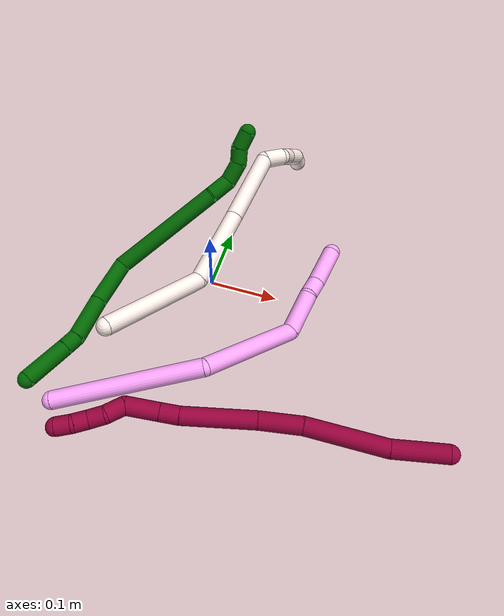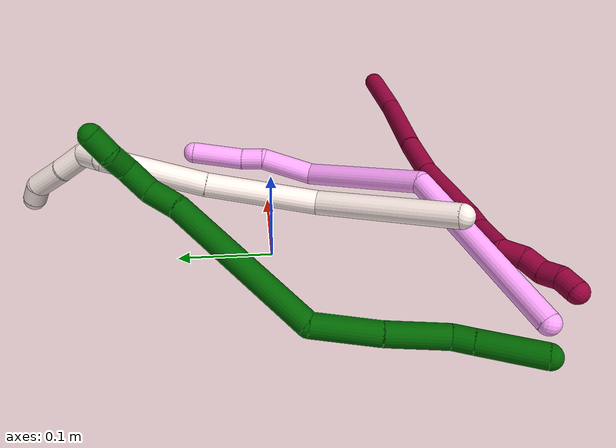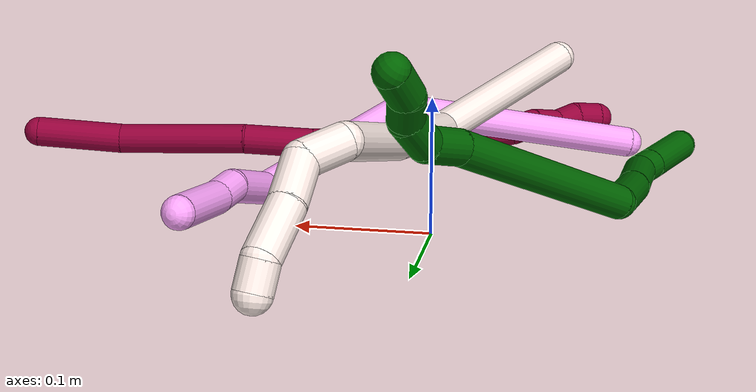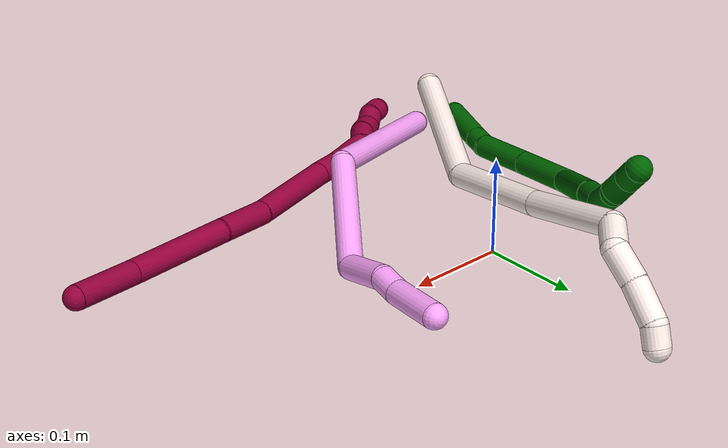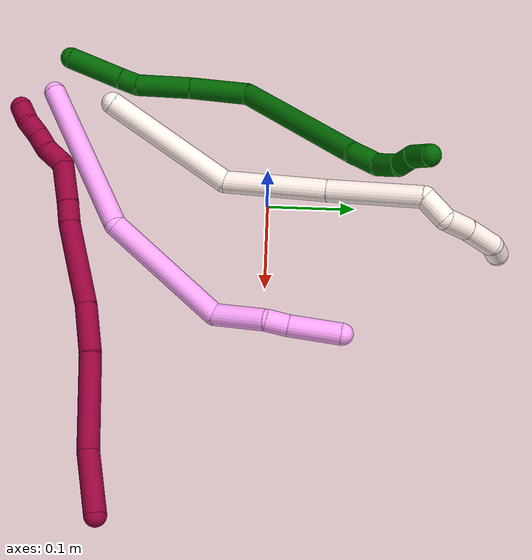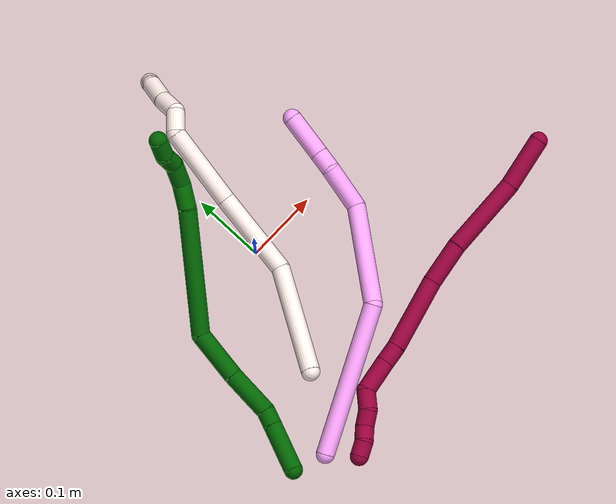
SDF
<sdf version="1.7">
 <world name="default">
  <model name="4">
   <static>0</static>
   <link name="4">
    <collision name="collision-cylinder-e_1_1_4">
     <pose>0.023759 0.081052 -0.058767 -2.19814 0.233009 -0.451027</pose>
     <geometry><cylinder><radius>0.0125</radius><length>0.205792</length></cylinder></geometry>
     <surface>
      <friction><ode><mu>1.16</mu><mu2>1.16</mu2><slip1>0</slip1><slip2>0</slip2></ode></friction>
      <contact><ode><kp>1e+06</kp><kd>1</kd><max_vel>0</max_vel><min_depth>0.001</min_depth></ode></contact>
     </surface>
    </collision>
    <visual name="visual-cylinder-e_1_1_4">
     <pose>0.023759 0.081052 -0.058767 -2.19814 0.233009 -0.451027</pose>
     <geometry><cylinder><radius>0.0125</radius><length>0.205792</length></cylinder></geometry>
     <material><ambient>1 0.65098 0.996078 1</ambient></material>
    </visual>
    <collision name="collision-cylinder-e_2_4_5">
     <pose>0.088465 0.181377 -0.175878 -2.82256 0.587814 -2.16446</pose>
     <geometry><cylinder><radius>0.0125</radius><length>0.147675</length></cylinder></geometry>
     <surface>
      <friction><ode><mu>1.16</mu><mu2>1.16</mu2><slip1>0</slip1><slip2>0</slip2></ode></friction>
      <contact><ode><kp>1e+06</kp><kd>1</kd><max_vel>0</max_vel><min_depth>0.001</min_depth></ode></contact>
     </surface>
    </collision>
    <visual name="visual-cylinder-e_2_4_5">
     <pose>0.088465 0.181377 -0.175878 -2.82256 0.587814 -2.16446</pose>
     <geometry><cylinder><radius>0.0125</radius><length>0.147675</length></cylinder></geometry>
     <material><ambient>1 0.65098 0.996078 1</ambient></material>
    </visual>
    <collision name="collision-cylinder-e_3_5_6">
     <pose>0.125845 0.203298 -0.26429 -3.0537 -0.117575 1.85825</pose>
     <geometry><cylinder><radius>0.0125</radius><length>0.060791</length></cylinder></geometry>
     <surface>
      <friction><ode><mu>1.16</mu><mu2>1.16</mu2><slip1>0</slip1><slip2>0</slip2></ode></friction>
      <contact><ode><kp>1e+06</kp><kd>1</kd><max_vel>0</max_vel><min_depth>0.001</min_depth></ode></contact>
     </surface>
    </collision>
    <visual name="visual-cylinder-e_3_5_6">
     <pose>0.125845 0.203298 -0.26429 -3.0537 -0.117575 1.85825</pose>
     <geometry><cylinder><radius>0.0125</radius><length>0.060791</length></cylinder></geometry>
     <material><ambient>1 0.65098 0.996078 1</ambient></material>
    </visual>
    <collision name="collision-cylinder-e_4_6_7">
     <pose>0.12514 0.205275 -0.307 3.08838 0.222209 2.67323</pose>
     <geometry><cylinder><radius>0.0125</radius><length>0.025956</length></cylinder></geometry>
     <surface>
      <friction><ode><mu>1.16</mu><mu2>1.16</mu2><slip1>0</slip1><slip2>0</slip2></ode></friction>
      <contact><ode><kp>1e+06</kp><kd>1</kd><max_vel>0</max_vel><min_depth>0.001</min_depth></ode></contact>
     </surface>
    </collision>
    <visual name="visual-cylinder-e_4_6_7">
     <pose>0.12514 0.205275 -0.307 3.08838 0.222209 2.67323</pose>
     <geometry><cylinder><radius>0.0125</radius><length>0.025956</length></cylinder></geometry>
     <material><ambient>1 0.65098 0.996078 1</ambient></material>
    </visual>
    <collision name="collision-cylinder-e_5_7_2">
     <pose>0.129542 0.204323 -0.349494 3.13229 0.051617 2.7849</pose>
     <geometry><cylinder><radius>0.0125</radius><length>0.059787</length></cylinder></geometry>
     <surface>
      <friction><ode><mu>1.16</mu><mu2>1.16</mu2><slip1>0</slip1><slip2>0</slip2></ode></friction>
      <contact><ode><kp>1e+06</kp><kd>1</kd><max_vel>0</max_vel><min_depth>0.001</min_depth></ode></contact>
     </surface>
    </collision>
    <visual name="visual-cylinder-e_5_7_2">
     <pose>0.129542 0.204323 -0.349494 3.13229 0.051617 2.7849</pose>
     <geometry><cylinder><radius>0.0125</radius><length>0.059787</length></cylinder></geometry>
     <material><ambient>1 0.65098 0.996078 1</ambient></material>
    </visual>
    <collision name="collision-sphere-2">
     <pose>0.131084 0.204045 -0.379346 0 -0 0</pose>
     <geometry><sphere><radius>0.0125</radius></sphere></geometry>
     <surface>
      <friction><ode><mu>1.16</mu><mu2>1.16</mu2><slip1>0</slip1><slip2>0</slip2></ode></friction>
      <contact><ode><kp>1e+06</kp><kd>1</kd><max_vel>0</max_vel><min_depth>0.001</min_depth></ode></contact>
     </surface>
    </collision>
    <visual name="visual-sphere-2">
     <pose>0.131084 0.204045 -0.379346 0 -0 0</pose>
     <geometry><sphere><radius>0.0125</radius></sphere></geometry>
     <material><ambient>1 0.65098 0.996078 1</ambient></material>
    </visual>
    <collision name="collision-sphere-7">
     <pose>0.128 0.204601 -0.319641 0 -0 0</pose>
     <geometry><sphere><radius>0.0125</radius></sphere></geometry>
     <surface>
      <friction><ode><mu>1.16</mu><mu2>1.16</mu2><slip1>0</slip1><slip2>0</slip2></ode></friction>
      <contact><ode><kp>1e+06</kp><kd>1</kd><max_vel>0</max_vel><min_depth>0.001</min_depth></ode></contact>
     </surface>
    </collision>
    <visual name="visual-sphere-7">
     <pose>0.128 0.204601 -0.319641 0 -0 0</pose>
     <geometry><sphere><radius>0.0125</radius></sphere></geometry>
     <material><ambient>1 0.65098 0.996078 1</ambient></material>
    </visual>
    <collision name="collision-sphere-6">
     <pose>0.12228 0.205948 -0.294359 0 -0 0</pose>
     <geometry><sphere><radius>0.0125</radius></sphere></geometry>
     <surface>
      <friction><ode><mu>1.16</mu><mu2>1.16</mu2><slip1>0</slip1><slip2>0</slip2></ode></friction>
      <contact><ode><kp>1e+06</kp><kd>1</kd><max_vel>0</max_vel><min_depth>0.001</min_depth></ode></contact>
     </surface>
    </collision>
    <visual name="visual-sphere-6">
     <pose>0.12228 0.205948 -0.294359 0 -0 0</pose>
     <geometry><sphere><radius>0.0125</radius></sphere></geometry>
     <material><ambient>1 0.65098 0.996078 1</ambient></material>
    </visual>
    <collision name="collision-sphere-5">
     <pose>0.129411 0.200649 -0.234221 0 -0 0</pose>
     <geometry><sphere><radius>0.0125</radius></sphere></geometry>
     <surface>
      <friction><ode><mu>1.16</mu><mu2>1.16</mu2><slip1>0</slip1><slip2>0</slip2></ode></friction>
      <contact><ode><kp>1e+06</kp><kd>1</kd><max_vel>0</max_vel><min_depth>0.001</min_depth></ode></contact>
     </surface>
    </collision>
    <visual name="visual-sphere-5">
     <pose>0.129411 0.200649 -0.234221 0 -0 0</pose>
     <geometry><sphere><radius>0.0125</radius></sphere></geometry>
     <material><ambient>1 0.65098 0.996078 1</ambient></material>
    </visual>
    <collision name="collision-sphere-1">
     <geometry><sphere><radius>0.0125</radius></sphere></geometry>
     <surface>
      <friction><ode><mu>1.16</mu><mu2>1.16</mu2><slip1>0</slip1><slip2>0</slip2></ode></friction>
      <contact><ode><kp>1e+06</kp><kd>1</kd><max_vel>0</max_vel><min_depth>0.001</min_depth></ode></contact>
     </surface>
    </collision>
    <visual name="visual-sphere-1">
     <geometry><sphere><radius>0.0125</radius></sphere></geometry>
     <material><ambient>1 0.65098 0.996078 1</ambient></material>
    </visual>
    <collision name="collision-sphere-4">
     <pose>0.047519 0.162105 -0.117534 0 -0 0</pose>
     <geometry><sphere><radius>0.0125</radius></sphere></geometry>
     <surface>
      <friction><ode><mu>1.16</mu><mu2>1.16</mu2><slip1>0</slip1><slip2>0</slip2></ode></friction>
      <contact><ode><kp>1e+06</kp><kd>1</kd><max_vel>0</max_vel><min_depth>0.001</min_depth></ode></contact>
     </surface>
    </collision>
    <visual name="visual-sphere-4">
     <pose>0.047519 0.162105 -0.117534 0 -0 0</pose>
     <geometry><sphere><radius>0.0125</radius></sphere></geometry>
     <material><ambient>1 0.65098 0.996078 1</ambient></material>
    </visual>
    <inertial>
     <pose>0.073193 0.146734 -0.165993 0 -0 0</pose>
     <mass>0.5</mass>
     <inertia>
      <ixx>2.6e-05</ixx>
      <ixy>0</ixy>
      <ixz>0</ixz>
      <iyy>-0.000572</iyy>
      <iyz>0</iyz>
      <izz>-0.001002</izz>
     </inertia>
    </inertial>
   </link>
   <pose>-0.133673 -0.25305 0.011497 1.91155 1.12007 0.155203</pose>
  </model>
  <model name="6">
   <static>0</static>
   <link name="6">
    <collision name="collision-cylinder-e_1_1_4">
     <pose>0.007081 0.031804 0.000307 -1.56115 0.219059 -0.216973</pose>
     <geometry><cylinder><radius>0.0125</radius><length>0.065168</length></cylinder></geometry>
     <surface>
      <friction><ode><mu>1.16</mu><mu2>1.16</mu2><slip1>0</slip1><slip2>0</slip2></ode></friction>
      <contact><ode><kp>1e+06</kp><kd>1</kd><max_vel>0</max_vel><min_depth>0.001</min_depth></ode></contact>
     </surface>
    </collision>
    <visual name="visual-cylinder-e_1_1_4">
     <pose>0.007081 0.031804 0.000307 -1.56115 0.219059 -0.216973</pose>
     <geometry><cylinder><radius>0.0125</radius><length>0.065168</length></cylinder></geometry>
     <material><ambient>0 0.392157 0.003922 1</ambient></material>
    </visual>
    <collision name="collision-cylinder-e_2_4_5">
     <pose>0.016421 0.07413 0.000445 -1.58684 0.211509 -0.214904</pose>
     <geometry><cylinder><radius>0.0125</radius><length>0.021527</length></cylinder></geometry>
     <surface>
      <friction><ode><mu>1.16</mu><mu2>1.16</mu2><slip1>0</slip1><slip2>0</slip2></ode></friction>
      <contact><ode><kp>1e+06</kp><kd>1</kd><max_vel>0</max_vel><min_depth>0.001</min_depth></ode></contact>
     </surface>
    </collision>
    <visual name="visual-cylinder-e_2_4_5">
     <pose>0.016421 0.07413 0.000445 -1.58684 0.211509 -0.214904</pose>
     <geometry><cylinder><radius>0.0125</radius><length>0.021527</length></cylinder></geometry>
     <material><ambient>0 0.392157 0.003922 1</ambient></material>
    </visual>
    <collision name="collision-cylinder-e_3_5_6">
     <pose>0.030886 0.112726 -0.007981 -1.85683 0.395149 -0.522833</pose>
     <geometry><cylinder><radius>0.0125</radius><length>0.06341</length></cylinder></geometry>
     <surface>
      <friction><ode><mu>1.16</mu><mu2>1.16</mu2><slip1>0</slip1><slip2>0</slip2></ode></friction>
      <contact><ode><kp>1e+06</kp><kd>1</kd><max_vel>0</max_vel><min_depth>0.001</min_depth></ode></contact>
     </surface>
    </collision>
    <visual name="visual-cylinder-e_3_5_6">
     <pose>0.030886 0.112726 -0.007981 -1.85683 0.395149 -0.522833</pose>
     <geometry><cylinder><radius>0.0125</radius><length>0.06341</length></cylinder></geometry>
     <material><ambient>0 0.392157 0.003922 1</ambient></material>
    </visual>
    <collision name="collision-cylinder-e_4_6_7">
     <pose>0.053725 0.172074 -0.024634 -1.83309 0.317307 -0.411343</pose>
     <geometry><cylinder><radius>0.0125</radius><length>0.068168</length></cylinder></geometry>
     <surface>
      <friction><ode><mu>1.16</mu><mu2>1.16</mu2><slip1>0</slip1><slip2>0</slip2></ode></friction>
      <contact><ode><kp>1e+06</kp><kd>1</kd><max_vel>0</max_vel><min_depth>0.001</min_depth></ode></contact>
     </surface>
    </collision>
    <visual name="visual-cylinder-e_4_6_7">
     <pose>0.053725 0.172074 -0.024634 -1.83309 0.317307 -0.411343</pose>
     <geometry><cylinder><radius>0.0125</radius><length>0.068168</length></cylinder></geometry>
     <material><ambient>0 0.392157 0.003922 1</ambient></material>
    </visual>
    <collision name="collision-cylinder-e_5_7_8">
     <pose>0.039546 0.283432 -0.043902 -1.70572 -0.297892 0.340287</pose>
     <geometry><cylinder><radius>0.0125</radius><length>0.169084</length></cylinder></geometry>
     <surface>
      <friction><ode><mu>1.16</mu><mu2>1.16</mu2><slip1>0</slip1><slip2>0</slip2></ode></friction>
      <contact><ode><kp>1e+06</kp><kd>1</kd><max_vel>0</max_vel><min_depth>0.001</min_depth></ode></contact>
     </surface>
    </collision>
    <visual name="visual-cylinder-e_5_7_8">
     <pose>0.039546 0.283432 -0.043902 -1.70572 -0.297892 0.340287</pose>
     <geometry><cylinder><radius>0.0125</radius><length>0.169084</length></cylinder></geometry>
     <material><ambient>0 0.392157 0.003922 1</ambient></material>
    </visual>
    <collision name="collision-cylinder-e_6_8_9">
     <pose>0.013021 0.38033 -0.0562 -1.65543 -0.101069 0.109989</pose>
     <geometry><cylinder><radius>0.0125</radius><length>0.033922</length></cylinder></geometry>
     <surface>
      <friction><ode><mu>1.16</mu><mu2>1.16</mu2><slip1>0</slip1><slip2>0</slip2></ode></friction>
      <contact><ode><kp>1e+06</kp><kd>1</kd><max_vel>0</max_vel><min_depth>0.001</min_depth></ode></contact>
     </surface>
    </collision>
    <visual name="visual-cylinder-e_6_8_9">
     <pose>0.013021 0.38033 -0.0562 -1.65543 -0.101069 0.109989</pose>
     <geometry><cylinder><radius>0.0125</radius><length>0.033922</length></cylinder></geometry>
     <material><ambient>0 0.392157 0.003922 1</ambient></material>
    </visual>
    <collision name="collision-cylinder-e_7_9_10">
     <pose>0.006955 0.409811 -0.065569 -2.13084 -0.283456 0.504758</pose>
     <geometry><cylinder><radius>0.0125</radius><length>0.031144</length></cylinder></geometry>
     <surface>
      <friction><ode><mu>1.16</mu><mu2>1.16</mu2><slip1>0</slip1><slip2>0</slip2></ode></friction>
      <contact><ode><kp>1e+06</kp><kd>1</kd><max_vel>0</max_vel><min_depth>0.001</min_depth></ode></contact>
     </surface>
    </collision>
    <visual name="visual-cylinder-e_7_9_10">
     <pose>0.006955 0.409811 -0.065569 -2.13084 -0.283456 0.504758</pose>
     <geometry><cylinder><radius>0.0125</radius><length>0.031144</length></cylinder></geometry>
     <material><ambient>0 0.392157 0.003922 1</ambient></material>
    </visual>
    <collision name="collision-cylinder-e_8_10_11">
     <pose>0.001046 0.428216 -0.082685 -2.58269 -0.142633 0.487973</pose>
     <geometry><cylinder><radius>0.0125</radius><length>0.021864</length></cylinder></geometry>
     <surface>
      <friction><ode><mu>1.16</mu><mu2>1.16</mu2><slip1>0</slip1><slip2>0</slip2></ode></friction>
      <contact><ode><kp>1e+06</kp><kd>1</kd><max_vel>0</max_vel><min_depth>0.001</min_depth></ode></contact>
     </surface>
    </collision>
    <visual name="visual-cylinder-e_8_10_11">
     <pose>0.001046 0.428216 -0.082685 -2.58269 -0.142633 0.487973</pose>
     <geometry><cylinder><radius>0.0125</radius><length>0.021864</length></cylinder></geometry>
     <material><ambient>0 0.392157 0.003922 1</ambient></material>
    </visual>
    <collision name="collision-cylinder-e_9_11_2">
     <pose>-0.004444 0.443794 -0.099138 -2.20765 -0.311096 0.603109</pose>
     <geometry><cylinder><radius>0.0125</radius><length>0.025712</length></cylinder></geometry>
     <surface>
      <friction><ode><mu>1.16</mu><mu2>1.16</mu2><slip1>0</slip1><slip2>0</slip2></ode></friction>
      <contact><ode><kp>1e+06</kp><kd>1</kd><max_vel>0</max_vel><min_depth>0.001</min_depth></ode></contact>
     </surface>
    </collision>
    <visual name="visual-cylinder-e_9_11_2">
     <pose>-0.004444 0.443794 -0.099138 -2.20765 -0.311096 0.603109</pose>
     <geometry><cylinder><radius>0.0125</radius><length>0.025712</length></cylinder></geometry>
     <material><ambient>0 0.392157 0.003922 1</ambient></material>
    </visual>
    <collision name="collision-sphere-2">
     <pose>-0.008379 0.453633 -0.106416 0 -0 0</pose>
     <geometry><sphere><radius>0.0125</radius></sphere></geometry>
     <surface>
      <friction><ode><mu>1.16</mu><mu2>1.16</mu2><slip1>0</slip1><slip2>0</slip2></ode></friction>
      <contact><ode><kp>1e+06</kp><kd>1</kd><max_vel>0</max_vel><min_depth>0.001</min_depth></ode></contact>
     </surface>
    </collision>
    <visual name="visual-sphere-2">
     <pose>-0.008379 0.453633 -0.106416 0 -0 0</pose>
     <geometry><sphere><radius>0.0125</radius></sphere></geometry>
     <material><ambient>0 0.392157 0.003922 1</ambient></material>
    </visual>
    <collision name="collision-sphere-11">
     <pose>-0.000508 0.433954 -0.09186 0 -0 0</pose>
     <geometry><sphere><radius>0.0125</radius></sphere></geometry>
     <surface>
      <friction><ode><mu>1.16</mu><mu2>1.16</mu2><slip1>0</slip1><slip2>0</slip2></ode></friction>
      <contact><ode><kp>1e+06</kp><kd>1</kd><max_vel>0</max_vel><min_depth>0.001</min_depth></ode></contact>
     </surface>
    </collision>
    <visual name="visual-sphere-11">
     <pose>-0.000508 0.433954 -0.09186 0 -0 0</pose>
     <geometry><sphere><radius>0.0125</radius></sphere></geometry>
     <material><ambient>0 0.392157 0.003922 1</ambient></material>
    </visual>
    <collision name="collision-sphere-10">
     <pose>0.0026 0.422478 -0.073511 0 -0 0</pose>
     <geometry><sphere><radius>0.0125</radius></sphere></geometry>
     <surface>
      <friction><ode><mu>1.16</mu><mu2>1.16</mu2><slip1>0</slip1><slip2>0</slip2></ode></friction>
      <contact><ode><kp>1e+06</kp><kd>1</kd><max_vel>0</max_vel><min_depth>0.001</min_depth></ode></contact>
     </surface>
    </collision>
    <visual name="visual-sphere-10">
     <pose>0.0026 0.422478 -0.073511 0 -0 0</pose>
     <geometry><sphere><radius>0.0125</radius></sphere></geometry>
     <material><ambient>0 0.392157 0.003922 1</ambient></material>
    </visual>
    <collision name="collision-sphere-9">
     <pose>0.01131 0.397145 -0.057627 0 -0 0</pose>
     <geometry><sphere><radius>0.0125</radius></sphere></geometry>
     <surface>
      <friction><ode><mu>1.16</mu><mu2>1.16</mu2><slip1>0</slip1><slip2>0</slip2></ode></friction>
      <contact><ode><kp>1e+06</kp><kd>1</kd><max_vel>0</max_vel><min_depth>0.001</min_depth></ode></contact>
     </surface>
    </collision>
    <visual name="visual-sphere-9">
     <pose>0.01131 0.397145 -0.057627 0 -0 0</pose>
     <geometry><sphere><radius>0.0125</radius></sphere></geometry>
     <material><ambient>0 0.392157 0.003922 1</ambient></material>
    </visual>
    <collision name="collision-sphere-4">
     <pose>0.014162 0.063608 0.000613 0 -0 0</pose>
     <geometry><sphere><radius>0.0125</radius></sphere></geometry>
     <surface>
      <friction><ode><mu>1.16</mu><mu2>1.16</mu2><slip1>0</slip1><slip2>0</slip2></ode></friction>
      <contact><ode><kp>1e+06</kp><kd>1</kd><max_vel>0</max_vel><min_depth>0.001</min_depth></ode></contact>
     </surface>
    </collision>
    <visual name="visual-sphere-4">
     <pose>0.014162 0.063608 0.000613 0 -0 0</pose>
     <geometry><sphere><radius>0.0125</radius></sphere></geometry>
     <material><ambient>0 0.392157 0.003922 1</ambient></material>
    </visual>
    <collision name="collision-sphere-1">
     <geometry><sphere><radius>0.0125</radius></sphere></geometry>
     <surface>
      <friction><ode><mu>1.16</mu><mu2>1.16</mu2><slip1>0</slip1><slip2>0</slip2></ode></friction>
      <contact><ode><kp>1e+06</kp><kd>1</kd><max_vel>0</max_vel><min_depth>0.001</min_depth></ode></contact>
     </surface>
    </collision>
    <visual name="visual-sphere-1">
     <geometry><sphere><radius>0.0125</radius></sphere></geometry>
     <material><ambient>0 0.392157 0.003922 1</ambient></material>
    </visual>
    <collision name="collision-sphere-8">
     <pose>0.014733 0.363516 -0.054774 0 -0 0</pose>
     <geometry><sphere><radius>0.0125</radius></sphere></geometry>
     <surface>
      <friction><ode><mu>1.16</mu><mu2>1.16</mu2><slip1>0</slip1><slip2>0</slip2></ode></friction>
      <contact><ode><kp>1e+06</kp><kd>1</kd><max_vel>0</max_vel><min_depth>0.001</min_depth></ode></contact>
     </surface>
    </collision>
    <visual name="visual-sphere-8">
     <pose>0.014733 0.363516 -0.054774 0 -0 0</pose>
     <geometry><sphere><radius>0.0125</radius></sphere></geometry>
     <material><ambient>0 0.392157 0.003922 1</ambient></material>
    </visual>
    <collision name="collision-sphere-5">
     <pose>0.018681 0.084653 0.000276 0 -0 0</pose>
     <geometry><sphere><radius>0.0125</radius></sphere></geometry>
     <surface>
      <friction><ode><mu>1.16</mu><mu2>1.16</mu2><slip1>0</slip1><slip2>0</slip2></ode></friction>
      <contact><ode><kp>1e+06</kp><kd>1</kd><max_vel>0</max_vel><min_depth>0.001</min_depth></ode></contact>
     </surface>
    </collision>
    <visual name="visual-sphere-5">
     <pose>0.018681 0.084653 0.000276 0 -0 0</pose>
     <geometry><sphere><radius>0.0125</radius></sphere></geometry>
     <material><ambient>0 0.392157 0.003922 1</ambient></material>
    </visual>
    <collision name="collision-sphere-6">
     <pose>0.04309 0.140798 -0.016237 0 -0 0</pose>
     <geometry><sphere><radius>0.0125</radius></sphere></geometry>
     <surface>
      <friction><ode><mu>1.16</mu><mu2>1.16</mu2><slip1>0</slip1><slip2>0</slip2></ode></friction>
      <contact><ode><kp>1e+06</kp><kd>1</kd><max_vel>0</max_vel><min_depth>0.001</min_depth></ode></contact>
     </surface>
    </collision>
    <visual name="visual-sphere-6">
     <pose>0.04309 0.140798 -0.016237 0 -0 0</pose>
     <geometry><sphere><radius>0.0125</radius></sphere></geometry>
     <material><ambient>0 0.392157 0.003922 1</ambient></material>
    </visual>
    <collision name="collision-sphere-7">
     <pose>0.06436 0.203349 -0.03303 0 -0 0</pose>
     <geometry><sphere><radius>0.0125</radius></sphere></geometry>
     <surface>
      <friction><ode><mu>1.16</mu><mu2>1.16</mu2><slip1>0</slip1><slip2>0</slip2></ode></friction>
      <contact><ode><kp>1e+06</kp><kd>1</kd><max_vel>0</max_vel><min_depth>0.001</min_depth></ode></contact>
     </surface>
    </collision>
    <visual name="visual-sphere-7">
     <pose>0.06436 0.203349 -0.03303 0 -0 0</pose>
     <geometry><sphere><radius>0.0125</radius></sphere></geometry>
     <material><ambient>0 0.392157 0.003922 1</ambient></material>
    </visual>
    <inertial>
     <pose>0.027379 0.233817 -0.035769 0 -0 0</pose>
     <mass>0.5</mass>
     <inertia>
      <ixx>0.000557</ixx>
      <ixy>0</ixy>
      <ixz>0</ixz>
      <iyy>0.000123</iyy>
      <iyz>0</iyz>
      <izz>-0.000382</izz>
     </inertia>
    </inertial>
   </link>
   <pose>-0.177952 -0.237082 0.014752 2.99816 0.666563 2.50365</pose>
  </model>
  <model name="8">
   <static>0</static>
   <link name="8">
    <collision name="collision-cylinder-e_1_1_4">
     <pose>-0.02285 -0.014277 0.023624 0.543591 -0.691477 -0.200103</pose>
     <geometry><cylinder><radius>0.0125</radius><length>0.071668</length></cylinder></geometry>
     <surface>
      <friction><ode><mu>1.16</mu><mu2>1.16</mu2><slip1>0</slip1><slip2>0</slip2></ode></friction>
      <contact><ode><kp>1e+06</kp><kd>1</kd><max_vel>0</max_vel><min_depth>0.001</min_depth></ode></contact>
     </surface>
    </collision>
    <visual name="visual-cylinder-e_1_1_4">
     <pose>-0.02285 -0.014277 0.023624 0.543591 -0.691477 -0.200103</pose>
     <geometry><cylinder><radius>0.0125</radius><length>0.071668</length></cylinder></geometry>
     <material><ambient>0.584314 0 0.227451 1</ambient></material>
    </visual>
    <collision name="collision-cylinder-e_2_4_5">
     <pose>-0.086573 -0.050532 0.075594 0.65954 -0.85051 -0.307572</pose>
     <geometry><cylinder><radius>0.0125</radius><length>0.108757</length></cylinder></geometry>
     <surface>
      <friction><ode><mu>1.16</mu><mu2>1.16</mu2><slip1>0</slip1><slip2>0</slip2></ode></friction>
      <contact><ode><kp>1e+06</kp><kd>1</kd><max_vel>0</max_vel><min_depth>0.001</min_depth></ode></contact>
     </surface>
    </collision>
    <visual name="visual-cylinder-e_2_4_5">
     <pose>-0.086573 -0.050532 0.075594 0.65954 -0.85051 -0.307572</pose>
     <geometry><cylinder><radius>0.0125</radius><length>0.108757</length></cylinder></geometry>
     <material><ambient>0.584314 0 0.227451 1</ambient></material>
    </visual>
    <collision name="collision-cylinder-e_3_5_6">
     <pose>-0.146706 -0.084029 0.122342 0.559295 -0.7257 -0.217198</pose>
     <geometry><cylinder><radius>0.0125</radius><length>0.058046</length></cylinder></geometry>
     <surface>
      <friction><ode><mu>1.16</mu><mu2>1.16</mu2><slip1>0</slip1><slip2>0</slip2></ode></friction>
      <contact><ode><kp>1e+06</kp><kd>1</kd><max_vel>0</max_vel><min_depth>0.001</min_depth></ode></contact>
     </surface>
    </collision>
    <visual name="visual-cylinder-e_3_5_6">
     <pose>-0.146706 -0.084029 0.122342 0.559295 -0.7257 -0.217198</pose>
     <geometry><cylinder><radius>0.0125</radius><length>0.058046</length></cylinder></geometry>
     <material><ambient>0.584314 0 0.227451 1</ambient></material>
    </visual>
    <collision name="collision-cylinder-e_4_6_7">
     <pose>-0.200155 -0.109337 0.174549 0.387278 -0.752582 -0.154653</pose>
     <geometry><cylinder><radius>0.0125</radius><length>0.100034</length></cylinder></geometry>
     <surface>
      <friction><ode><mu>1.16</mu><mu2>1.16</mu2><slip1>0</slip1><slip2>0</slip2></ode></friction>
      <contact><ode><kp>1e+06</kp><kd>1</kd><max_vel>0</max_vel><min_depth>0.001</min_depth></ode></contact>
     </surface>
    </collision>
    <visual name="visual-cylinder-e_4_6_7">
     <pose>-0.200155 -0.109337 0.174549 0.387278 -0.752582 -0.154653</pose>
     <geometry><cylinder><radius>0.0125</radius><length>0.100034</length></cylinder></geometry>
     <material><ambient>0.584314 0 0.227451 1</ambient></material>
    </visual>
    <collision name="collision-cylinder-e_5_7_8">
     <pose>-0.244002 -0.12743 0.216008 0.512377 -0.832918 -0.230704</pose>
     <geometry><cylinder><radius>0.0125</radius><length>0.026108</length></cylinder></geometry>
     <surface>
      <friction><ode><mu>1.16</mu><mu2>1.16</mu2><slip1>0</slip1><slip2>0</slip2></ode></friction>
      <contact><ode><kp>1e+06</kp><kd>1</kd><max_vel>0</max_vel><min_depth>0.001</min_depth></ode></contact>
     </surface>
    </collision>
    <visual name="visual-cylinder-e_5_7_8">
     <pose>-0.244002 -0.12743 0.216008 0.512377 -0.832918 -0.230704</pose>
     <geometry><cylinder><radius>0.0125</radius><length>0.026108</length></cylinder></geometry>
     <material><ambient>0.584314 0 0.227451 1</ambient></material>
    </visual>
    <collision name="collision-cylinder-e_6_8_9">
     <pose>-0.271509 -0.137215 0.236735 0.396912 -0.899617 -0.193586</pose>
     <geometry><cylinder><radius>0.0125</radius><length>0.045585</length></cylinder></geometry>
     <surface>
      <friction><ode><mu>1.16</mu><mu2>1.16</mu2><slip1>0</slip1><slip2>0</slip2></ode></friction>
      <contact><ode><kp>1e+06</kp><kd>1</kd><max_vel>0</max_vel><min_depth>0.001</min_depth></ode></contact>
     </surface>
    </collision>
    <visual name="visual-cylinder-e_6_8_9">
     <pose>-0.271509 -0.137215 0.236735 0.396912 -0.899617 -0.193586</pose>
     <geometry><cylinder><radius>0.0125</radius><length>0.045585</length></cylinder></geometry>
     <material><ambient>0.584314 0 0.227451 1</ambient></material>
    </visual>
    <collision name="collision-cylinder-e_7_9_10">
     <pose>-0.2946 -0.140198 0.261654 -0.207676 -0.408626 0.04318</pose>
     <geometry><cylinder><radius>0.0125</radius><length>0.026386</length></cylinder></geometry>
     <surface>
      <friction><ode><mu>1.16</mu><mu2>1.16</mu2><slip1>0</slip1><slip2>0</slip2></ode></friction>
      <contact><ode><kp>1e+06</kp><kd>1</kd><max_vel>0</max_vel><min_depth>0.001</min_depth></ode></contact>
     </surface>
    </collision>
    <visual name="visual-cylinder-e_7_9_10">
     <pose>-0.2946 -0.140198 0.261654 -0.207676 -0.408626 0.04318</pose>
     <geometry><cylinder><radius>0.0125</radius><length>0.026386</length></cylinder></geometry>
     <material><ambient>0.584314 0 0.227451 1</ambient></material>
    </visual>
    <collision name="collision-cylinder-e_8_10_11">
     <pose>-0.304866 -0.139575 0.283426 0.186549 -0.461553 -0.043953</pose>
     <geometry><cylinder><radius>0.0125</radius><length>0.022562</length></cylinder></geometry>
     <surface>
      <friction><ode><mu>1.16</mu><mu2>1.16</mu2><slip1>0</slip1><slip2>0</slip2></ode></friction>
      <contact><ode><kp>1e+06</kp><kd>1</kd><max_vel>0</max_vel><min_depth>0.001</min_depth></ode></contact>
     </surface>
    </collision>
    <visual name="visual-cylinder-e_8_10_11">
     <pose>-0.304866 -0.139575 0.283426 0.186549 -0.461553 -0.043953</pose>
     <geometry><cylinder><radius>0.0125</radius><length>0.022562</length></cylinder></geometry>
     <material><ambient>0.584314 0 0.227451 1</ambient></material>
    </visual>
    <collision name="collision-cylinder-e_9_11_12">
     <pose>-0.315749 -0.139627 0.301513 -0.219666 -0.611151 0.069547</pose>
     <geometry><cylinder><radius>0.0125</radius><length>0.020422</length></cylinder></geometry>
     <surface>
      <friction><ode><mu>1.16</mu><mu2>1.16</mu2><slip1>0</slip1><slip2>0</slip2></ode></friction>
      <contact><ode><kp>1e+06</kp><kd>1</kd><max_vel>0</max_vel><min_depth>0.001</min_depth></ode></contact>
     </surface>
    </collision>
    <visual name="visual-cylinder-e_9_11_12">
     <pose>-0.315749 -0.139627 0.301513 -0.219666 -0.611151 0.069547</pose>
     <geometry><cylinder><radius>0.0125</radius><length>0.020422</length></cylinder></geometry>
     <material><ambient>0.584314 0 0.227451 1</ambient></material>
    </visual>
    <collision name="collision-cylinder-e_10_12_2">
     <pose>-0.326972 -0.140007 0.318086 0.256079 -0.552754 -0.073</pose>
     <geometry><cylinder><radius>0.0125</radius><length>0.020432</length></cylinder></geometry>
     <surface>
      <friction><ode><mu>1.16</mu><mu2>1.16</mu2><slip1>0</slip1><slip2>0</slip2></ode></friction>
      <contact><ode><kp>1e+06</kp><kd>1</kd><max_vel>0</max_vel><min_depth>0.001</min_depth></ode></contact>
     </surface>
    </collision>
    <visual name="visual-cylinder-e_10_12_2">
     <pose>-0.326972 -0.140007 0.318086 0.256079 -0.552754 -0.073</pose>
     <geometry><cylinder><radius>0.0125</radius><length>0.020432</length></cylinder></geometry>
     <material><ambient>0.584314 0 0.227451 1</ambient></material>
    </visual>
    <collision name="collision-sphere-2">
     <pose>-0.332336 -0.142209 0.326497 0 -0 0</pose>
     <geometry><sphere><radius>0.0125</radius></sphere></geometry>
     <surface>
      <friction><ode><mu>1.16</mu><mu2>1.16</mu2><slip1>0</slip1><slip2>0</slip2></ode></friction>
      <contact><ode><kp>1e+06</kp><kd>1</kd><max_vel>0</max_vel><min_depth>0.001</min_depth></ode></contact>
     </surface>
    </collision>
    <visual name="visual-sphere-2">
     <pose>-0.332336 -0.142209 0.326497 0 -0 0</pose>
     <geometry><sphere><radius>0.0125</radius></sphere></geometry>
     <material><ambient>0.584314 0 0.227451 1</ambient></material>
    </visual>
    <collision name="collision-sphere-12">
     <pose>-0.321608 -0.137804 0.309675 0 -0 0</pose>
     <geometry><sphere><radius>0.0125</radius></sphere></geometry>
     <surface>
      <friction><ode><mu>1.16</mu><mu2>1.16</mu2><slip1>0</slip1><slip2>0</slip2></ode></friction>
      <contact><ode><kp>1e+06</kp><kd>1</kd><max_vel>0</max_vel><min_depth>0.001</min_depth></ode></contact>
     </surface>
    </collision>
    <visual name="visual-sphere-12">
     <pose>-0.321608 -0.137804 0.309675 0 -0 0</pose>
     <geometry><sphere><radius>0.0125</radius></sphere></geometry>
     <material><ambient>0.584314 0 0.227451 1</ambient></material>
    </visual>
    <collision name="collision-sphere-11">
     <pose>-0.30989 -0.141449 0.293351 0 -0 0</pose>
     <geometry><sphere><radius>0.0125</radius></sphere></geometry>
     <surface>
      <friction><ode><mu>1.16</mu><mu2>1.16</mu2><slip1>0</slip1><slip2>0</slip2></ode></friction>
      <contact><ode><kp>1e+06</kp><kd>1</kd><max_vel>0</max_vel><min_depth>0.001</min_depth></ode></contact>
     </surface>
    </collision>
    <visual name="visual-sphere-11">
     <pose>-0.30989 -0.141449 0.293351 0 -0 0</pose>
     <geometry><sphere><radius>0.0125</radius></sphere></geometry>
     <material><ambient>0.584314 0 0.227451 1</ambient></material>
    </visual>
    <collision name="collision-sphere-10">
     <pose>-0.299842 -0.137702 0.273501 0 -0 0</pose>
     <geometry><sphere><radius>0.0125</radius></sphere></geometry>
     <surface>
      <friction><ode><mu>1.16</mu><mu2>1.16</mu2><slip1>0</slip1><slip2>0</slip2></ode></friction>
      <contact><ode><kp>1e+06</kp><kd>1</kd><max_vel>0</max_vel><min_depth>0.001</min_depth></ode></contact>
     </surface>
    </collision>
    <visual name="visual-sphere-10">
     <pose>-0.299842 -0.137702 0.273501 0 -0 0</pose>
     <geometry><sphere><radius>0.0125</radius></sphere></geometry>
     <material><ambient>0.584314 0 0.227451 1</ambient></material>
    </visual>
    <collision name="collision-sphere-9">
     <pose>-0.289358 -0.142695 0.249808 0 -0 0</pose>
     <geometry><sphere><radius>0.0125</radius></sphere></geometry>
     <surface>
      <friction><ode><mu>1.16</mu><mu2>1.16</mu2><slip1>0</slip1><slip2>0</slip2></ode></friction>
      <contact><ode><kp>1e+06</kp><kd>1</kd><max_vel>0</max_vel><min_depth>0.001</min_depth></ode></contact>
     </surface>
    </collision>
    <visual name="visual-sphere-9">
     <pose>-0.289358 -0.142695 0.249808 0 -0 0</pose>
     <geometry><sphere><radius>0.0125</radius></sphere></geometry>
     <material><ambient>0.584314 0 0.227451 1</ambient></material>
    </visual>
    <collision name="collision-sphere-4">
     <pose>-0.045701 -0.028553 0.047249 0 -0 0</pose>
     <geometry><sphere><radius>0.0125</radius></sphere></geometry>
     <surface>
      <friction><ode><mu>1.16</mu><mu2>1.16</mu2><slip1>0</slip1><slip2>0</slip2></ode></friction>
      <contact><ode><kp>1e+06</kp><kd>1</kd><max_vel>0</max_vel><min_depth>0.001</min_depth></ode></contact>
     </surface>
    </collision>
    <visual name="visual-sphere-4">
     <pose>-0.045701 -0.028553 0.047249 0 -0 0</pose>
     <geometry><sphere><radius>0.0125</radius></sphere></geometry>
     <material><ambient>0.584314 0 0.227451 1</ambient></material>
    </visual>
    <collision name="collision-sphere-1">
     <geometry><sphere><radius>0.0125</radius></sphere></geometry>
     <surface>
      <friction><ode><mu>1.16</mu><mu2>1.16</mu2><slip1>0</slip1><slip2>0</slip2></ode></friction>
      <contact><ode><kp>1e+06</kp><kd>1</kd><max_vel>0</max_vel><min_depth>0.001</min_depth></ode></contact>
     </surface>
    </collision>
    <visual name="visual-sphere-1">
     <geometry><sphere><radius>0.0125</radius></sphere></geometry>
     <material><ambient>0.584314 0 0.227451 1</ambient></material>
    </visual>
    <collision name="collision-sphere-8">
     <pose>-0.25366 -0.131735 0.223662 0 -0 0</pose>
     <geometry><sphere><radius>0.0125</radius></sphere></geometry>
     <surface>
      <friction><ode><mu>1.16</mu><mu2>1.16</mu2><slip1>0</slip1><slip2>0</slip2></ode></friction>
      <contact><ode><kp>1e+06</kp><kd>1</kd><max_vel>0</max_vel><min_depth>0.001</min_depth></ode></contact>
     </surface>
    </collision>
    <visual name="visual-sphere-8">
     <pose>-0.25366 -0.131735 0.223662 0 -0 0</pose>
     <geometry><sphere><radius>0.0125</radius></sphere></geometry>
     <material><ambient>0.584314 0 0.227451 1</ambient></material>
    </visual>
    <collision name="collision-sphere-5">
     <pose>-0.127445 -0.07251 0.10394 0 -0 0</pose>
     <geometry><sphere><radius>0.0125</radius></sphere></geometry>
     <surface>
      <friction><ode><mu>1.16</mu><mu2>1.16</mu2><slip1>0</slip1><slip2>0</slip2></ode></friction>
      <contact><ode><kp>1e+06</kp><kd>1</kd><max_vel>0</max_vel><min_depth>0.001</min_depth></ode></contact>
     </surface>
    </collision>
    <visual name="visual-sphere-5">
     <pose>-0.127445 -0.07251 0.10394 0 -0 0</pose>
     <geometry><sphere><radius>0.0125</radius></sphere></geometry>
     <material><ambient>0.584314 0 0.227451 1</ambient></material>
    </visual>
    <collision name="collision-sphere-6">
     <pose>-0.165968 -0.095548 0.140744 0 -0 0</pose>
     <geometry><sphere><radius>0.0125</radius></sphere></geometry>
     <surface>
      <friction><ode><mu>1.16</mu><mu2>1.16</mu2><slip1>0</slip1><slip2>0</slip2></ode></friction>
      <contact><ode><kp>1e+06</kp><kd>1</kd><max_vel>0</max_vel><min_depth>0.001</min_depth></ode></contact>
     </surface>
    </collision>
    <visual name="visual-sphere-6">
     <pose>-0.165968 -0.095548 0.140744 0 -0 0</pose>
     <geometry><sphere><radius>0.0125</radius></sphere></geometry>
     <material><ambient>0.584314 0 0.227451 1</ambient></material>
    </visual>
    <collision name="collision-sphere-7">
     <pose>-0.234343 -0.123125 0.208354 0 -0 0</pose>
     <geometry><sphere><radius>0.0125</radius></sphere></geometry>
     <surface>
      <friction><ode><mu>1.16</mu><mu2>1.16</mu2><slip1>0</slip1><slip2>0</slip2></ode></friction>
      <contact><ode><kp>1e+06</kp><kd>1</kd><max_vel>0</max_vel><min_depth>0.001</min_depth></ode></contact>
     </surface>
    </collision>
    <visual name="visual-sphere-7">
     <pose>-0.234343 -0.123125 0.208354 0 -0 0</pose>
     <geometry><sphere><radius>0.0125</radius></sphere></geometry>
     <material><ambient>0.584314 0 0.227451 1</ambient></material>
    </visual>
    <inertial>
     <pose>-0.172238 -0.088952 0.153726 0 -0 0</pose>
     <mass>0.5</mass>
     <inertia>
      <ixx>0.000118</ixx>
      <ixy>0</ixy>
      <ixz>0</ixz>
      <iyy>0.000196</iyy>
      <iyz>0</iyz>
      <izz>0.000308</izz>
     </inertia>
    </inertial>
   </link>
   <pose>0.366178 -0.171356 0.017617 2.03603 0.702543 -0.244186</pose>
  </model>
  <model name="11">
   <static>0</static>
   <link name="11">
    <collision name="collision-cylinder-e_1_1_4">
     <pose>0.044097 0.050531 -0.035051 -2.17725 0.622075 -1.10163</pose>
     <geometry><cylinder><radius>0.0125</radius><length>0.151347</length></cylinder></geometry>
     <surface>
      <friction><ode><mu>1.16</mu><mu2>1.16</mu2><slip1>0</slip1><slip2>0</slip2></ode></friction>
      <contact><ode><kp>1e+06</kp><kd>1</kd><max_vel>0</max_vel><min_depth>0.001</min_depth></ode></contact>
     </surface>
    </collision>
    <visual name="visual-cylinder-e_1_1_4">
     <pose>0.044097 0.050531 -0.035051 -2.17725 0.622075 -1.10163</pose>
     <geometry><cylinder><radius>0.0125</radius><length>0.151347</length></cylinder></geometry>
     <material><ambient>1 0.933333 0.909804 1</ambient></material>
    </visual>
    <collision name="collision-cylinder-e_2_4_5">
     <pose>0.103203 0.156341 -0.077824 -1.70958 0.262699 -0.301391</pose>
     <geometry><cylinder><radius>0.0125</radius><length>0.115596</length></cylinder></geometry>
     <surface>
      <friction><ode><mu>1.16</mu><mu2>1.16</mu2><slip1>0</slip1><slip2>0</slip2></ode></friction>
      <contact><ode><kp>1e+06</kp><kd>1</kd><max_vel>0</max_vel><min_depth>0.001</min_depth></ode></contact>
     </surface>
    </collision>
    <visual name="visual-cylinder-e_2_4_5">
     <pose>0.103203 0.156341 -0.077824 -1.70958 0.262699 -0.301391</pose>
     <geometry><cylinder><radius>0.0125</radius><length>0.115596</length></cylinder></geometry>
     <material><ambient>1 0.933333 0.909804 1</ambient></material>
    </visual>
    <collision name="collision-cylinder-e_3_5_6">
     <pose>0.133263 0.263161 -0.088103 -1.62038 0.283772 -0.297997</pose>
     <geometry><cylinder><radius>0.0125</radius><length>0.10751</length></cylinder></geometry>
     <surface>
      <friction><ode><mu>1.16</mu><mu2>1.16</mu2><slip1>0</slip1><slip2>0</slip2></ode></friction>
      <contact><ode><kp>1e+06</kp><kd>1</kd><max_vel>0</max_vel><min_depth>0.001</min_depth></ode></contact>
     </surface>
    </collision>
    <visual name="visual-cylinder-e_3_5_6">
     <pose>0.133263 0.263161 -0.088103 -1.62038 0.283772 -0.297997</pose>
     <geometry><cylinder><radius>0.0125</radius><length>0.10751</length></cylinder></geometry>
     <material><ambient>1 0.933333 0.909804 1</ambient></material>
    </visual>
    <collision name="collision-cylinder-e_4_6_7">
     <pose>0.16024 0.322916 -0.097533 -2.26751 0.839128 -1.52455</pose>
     <geometry><cylinder><radius>0.0125</radius><length>0.032059</length></cylinder></geometry>
     <surface>
      <friction><ode><mu>1.16</mu><mu2>1.16</mu2><slip1>0</slip1><slip2>0</slip2></ode></friction>
      <contact><ode><kp>1e+06</kp><kd>1</kd><max_vel>0</max_vel><min_depth>0.001</min_depth></ode></contact>
     </surface>
    </collision>
    <visual name="visual-cylinder-e_4_6_7">
     <pose>0.16024 0.322916 -0.097533 -2.26751 0.839128 -1.52455</pose>
     <geometry><cylinder><radius>0.0125</radius><length>0.032059</length></cylinder></geometry>
     <material><ambient>1 0.933333 0.909804 1</ambient></material>
    </visual>
    <collision name="collision-cylinder-e_5_7_8">
     <pose>0.174293 0.340753 -0.117952 -2.52391 0.127302 -0.394353</pose>
     <geometry><cylinder><radius>0.0125</radius><length>0.033504</length></cylinder></geometry>
     <surface>
      <friction><ode><mu>1.16</mu><mu2>1.16</mu2><slip1>0</slip1><slip2>0</slip2></ode></friction>
      <contact><ode><kp>1e+06</kp><kd>1</kd><max_vel>0</max_vel><min_depth>0.001</min_depth></ode></contact>
     </surface>
    </collision>
    <visual name="visual-cylinder-e_5_7_8">
     <pose>0.174293 0.340753 -0.117952 -2.52391 0.127302 -0.394353</pose>
     <geometry><cylinder><radius>0.0125</radius><length>0.033504</length></cylinder></geometry>
     <material><ambient>1 0.933333 0.909804 1</ambient></material>
    </visual>
    <collision name="collision-cylinder-e_6_8_9">
     <pose>0.181409 0.361099 -0.147606 -2.5543 0.252332 -0.794335</pose>
     <geometry><cylinder><radius>0.0125</radius><length>0.039967</length></cylinder></geometry>
     <surface>
      <friction><ode><mu>1.16</mu><mu2>1.16</mu2><slip1>0</slip1><slip2>0</slip2></ode></friction>
      <contact><ode><kp>1e+06</kp><kd>1</kd><max_vel>0</max_vel><min_depth>0.001</min_depth></ode></contact>
     </surface>
    </collision>
    <visual name="visual-cylinder-e_6_8_9">
     <pose>0.181409 0.361099 -0.147606 -2.5543 0.252332 -0.794335</pose>
     <geometry><cylinder><radius>0.0125</radius><length>0.039967</length></cylinder></geometry>
     <material><ambient>1 0.933333 0.909804 1</ambient></material>
    </visual>
    <collision name="collision-cylinder-e_7_9_2">
     <pose>0.187635 0.372785 -0.1736 -3.04443 0.123889 -1.81192</pose>
     <geometry><cylinder><radius>0.0125</radius><length>0.020017</length></cylinder></geometry>
     <surface>
      <friction><ode><mu>1.16</mu><mu2>1.16</mu2><slip1>0</slip1><slip2>0</slip2></ode></friction>
      <contact><ode><kp>1e+06</kp><kd>1</kd><max_vel>0</max_vel><min_depth>0.001</min_depth></ode></contact>
     </surface>
    </collision>
    <visual name="visual-cylinder-e_7_9_2">
     <pose>0.187635 0.372785 -0.1736 -3.04443 0.123889 -1.81192</pose>
     <geometry><cylinder><radius>0.0125</radius><length>0.020017</length></cylinder></geometry>
     <material><ambient>1 0.933333 0.909804 1</ambient></material>
    </visual>
    <collision name="collision-sphere-2">
     <pose>0.188872 0.373748 -0.183484 0 -0 0</pose>
     <geometry><sphere><radius>0.0125</radius></sphere></geometry>
     <surface>
      <friction><ode><mu>1.16</mu><mu2>1.16</mu2><slip1>0</slip1><slip2>0</slip2></ode></friction>
      <contact><ode><kp>1e+06</kp><kd>1</kd><max_vel>0</max_vel><min_depth>0.001</min_depth></ode></contact>
     </surface>
    </collision>
    <visual name="visual-sphere-2">
     <pose>0.188872 0.373748 -0.183484 0 -0 0</pose>
     <geometry><sphere><radius>0.0125</radius></sphere></geometry>
     <material><ambient>1 0.933333 0.909804 1</ambient></material>
    </visual>
    <collision name="collision-sphere-9">
     <pose>0.186398 0.371821 -0.163715 0 -0 0</pose>
     <geometry><sphere><radius>0.0125</radius></sphere></geometry>
     <surface>
      <friction><ode><mu>1.16</mu><mu2>1.16</mu2><slip1>0</slip1><slip2>0</slip2></ode></friction>
      <contact><ode><kp>1e+06</kp><kd>1</kd><max_vel>0</max_vel><min_depth>0.001</min_depth></ode></contact>
     </surface>
    </collision>
    <visual name="visual-sphere-9">
     <pose>0.186398 0.371821 -0.163715 0 -0 0</pose>
     <geometry><sphere><radius>0.0125</radius></sphere></geometry>
     <material><ambient>1 0.933333 0.909804 1</ambient></material>
    </visual>
    <collision name="collision-sphere-4">
     <pose>0.088193 0.101062 -0.070102 0 -0 0</pose>
     <geometry><sphere><radius>0.0125</radius></sphere></geometry>
     <surface>
      <friction><ode><mu>1.16</mu><mu2>1.16</mu2><slip1>0</slip1><slip2>0</slip2></ode></friction>
      <contact><ode><kp>1e+06</kp><kd>1</kd><max_vel>0</max_vel><min_depth>0.001</min_depth></ode></contact>
     </surface>
    </collision>
    <visual name="visual-sphere-4">
     <pose>0.088193 0.101062 -0.070102 0 -0 0</pose>
     <geometry><sphere><radius>0.0125</radius></sphere></geometry>
     <material><ambient>1 0.933333 0.909804 1</ambient></material>
    </visual>
    <collision name="collision-sphere-1">
     <geometry><sphere><radius>0.0125</radius></sphere></geometry>
     <surface>
      <friction><ode><mu>1.16</mu><mu2>1.16</mu2><slip1>0</slip1><slip2>0</slip2></ode></friction>
      <contact><ode><kp>1e+06</kp><kd>1</kd><max_vel>0</max_vel><min_depth>0.001</min_depth></ode></contact>
     </surface>
    </collision>
    <visual name="visual-sphere-1">
     <geometry><sphere><radius>0.0125</radius></sphere></geometry>
     <material><ambient>1 0.933333 0.909804 1</ambient></material>
    </visual>
    <collision name="collision-sphere-8">
     <pose>0.17642 0.350376 -0.131498 0 -0 0</pose>
     <geometry><sphere><radius>0.0125</radius></sphere></geometry>
     <surface>
      <friction><ode><mu>1.16</mu><mu2>1.16</mu2><slip1>0</slip1><slip2>0</slip2></ode></friction>
      <contact><ode><kp>1e+06</kp><kd>1</kd><max_vel>0</max_vel><min_depth>0.001</min_depth></ode></contact>
     </surface>
    </collision>
    <visual name="visual-sphere-8">
     <pose>0.17642 0.350376 -0.131498 0 -0 0</pose>
     <geometry><sphere><radius>0.0125</radius></sphere></geometry>
     <material><ambient>1 0.933333 0.909804 1</ambient></material>
    </visual>
    <collision name="collision-sphere-5">
     <pose>0.118212 0.211619 -0.085545 0 -0 0</pose>
     <geometry><sphere><radius>0.0125</radius></sphere></geometry>
     <surface>
      <friction><ode><mu>1.16</mu><mu2>1.16</mu2><slip1>0</slip1><slip2>0</slip2></ode></friction>
      <contact><ode><kp>1e+06</kp><kd>1</kd><max_vel>0</max_vel><min_depth>0.001</min_depth></ode></contact>
     </surface>
    </collision>
    <visual name="visual-sphere-5">
     <pose>0.118212 0.211619 -0.085545 0 -0 0</pose>
     <geometry><sphere><radius>0.0125</radius></sphere></geometry>
     <material><ambient>1 0.933333 0.909804 1</ambient></material>
    </visual>
    <collision name="collision-sphere-6">
     <pose>0.148313 0.314702 -0.090661 0 -0 0</pose>
     <geometry><sphere><radius>0.0125</radius></sphere></geometry>
     <surface>
      <friction><ode><mu>1.16</mu><mu2>1.16</mu2><slip1>0</slip1><slip2>0</slip2></ode></friction>
      <contact><ode><kp>1e+06</kp><kd>1</kd><max_vel>0</max_vel><min_depth>0.001</min_depth></ode></contact>
     </surface>
    </collision>
    <visual name="visual-sphere-6">
     <pose>0.148313 0.314702 -0.090661 0 -0 0</pose>
     <geometry><sphere><radius>0.0125</radius></sphere></geometry>
     <material><ambient>1 0.933333 0.909804 1</ambient></material>
    </visual>
    <collision name="collision-sphere-7">
     <pose>0.172166 0.33113 -0.104405 0 -0 0</pose>
     <geometry><sphere><radius>0.0125</radius></sphere></geometry>
     <surface>
      <friction><ode><mu>1.16</mu><mu2>1.16</mu2><slip1>0</slip1><slip2>0</slip2></ode></friction>
      <contact><ode><kp>1e+06</kp><kd>1</kd><max_vel>0</max_vel><min_depth>0.001</min_depth></ode></contact>
     </surface>
    </collision>
    <visual name="visual-sphere-7">
     <pose>0.172166 0.33113 -0.104405 0 -0 0</pose>
     <geometry><sphere><radius>0.0125</radius></sphere></geometry>
     <material><ambient>1 0.933333 0.909804 1</ambient></material>
    </visual>
    <inertial>
     <pose>0.109827 0.195351 -0.080452 0 -0 0</pose>
     <mass>0.5</mass>
     <inertia>
      <ixx>6.1e-05</ixx>
      <ixy>0</ixy>
      <ixz>0</ixz>
      <iyy>-0.000221</iyy>
      <iyz>0</iyz>
      <izz>-0.000692</izz>
     </inertia>
    </inertial>
   </link>
   <pose>-0.077355 -0.174108 0.098617 0.274948 -0.086913 0.121309</pose>
  </model>
 </world>
</sdf>
